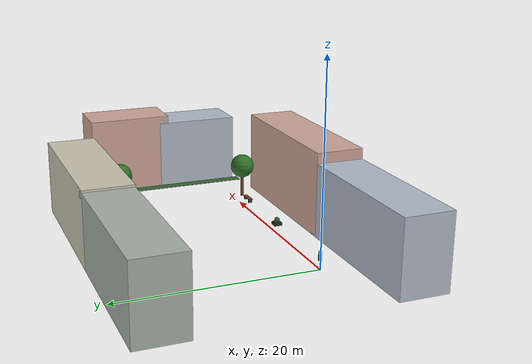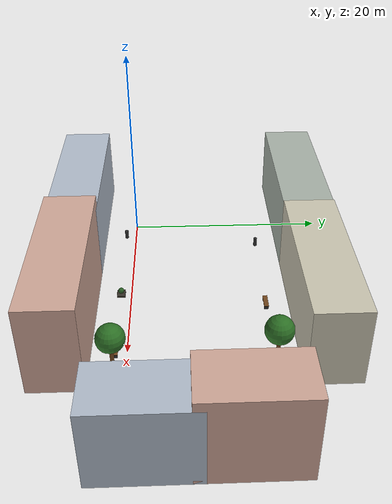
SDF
<sdf version="1.6">
 <world name="sidewalk_ring">
  <model name="grass_R">
   <static>true</static>
   <pose>28.100 6.000 0.045 0 0 0</pose>
   <link name="link">
    <collision name="col"><geometry><box><size>1.2 18 0.03</size></box></geometry></collision>
    <visual name="vis">
     <geometry><box><size>1.2 18 0.03</size></box></geometry>
     <material>
      <ambient>0.22 0.4 0.2 1</ambient>
      <diffuse>0.22 0.4 0.2 1</diffuse>
      <specular>0.1 0.1 0.1 1</specular>
     </material>
    </visual>
   </link>
   <plugin filename="ignition-gazebo-label-system" name="ignition::gazebo::systems::Label">
    <label>10</label>
   </plugin>
  </model>
  <model name="bldg_A1">
   <static>true</static>
   <pose>0.000 -5.700 3.840 0 0 0</pose>
   <link name="link">
    <collision name="col"><geometry><box><size>17 5 7.679317158241488</size></box></geometry></collision>
    <visual name="vis">
     <geometry><box><size>17 5 7.679317158241488</size></box></geometry>
     <material>
      <ambient>0.7 0.74 0.8 1</ambient>
      <diffuse>0.7 0.74 0.8 1</diffuse>
      <specular>0.1 0.1 0.1 1</specular>
     </material>
    </visual>
   </link>
   <plugin filename="ignition-gazebo-label-system" name="ignition::gazebo::systems::Label">
    <label>3</label>
   </plugin>
  </model>
  <model name="bldg_A2">
   <static>true</static>
   <pose>16.000 -5.700 4.386 0 0 0</pose>
   <link name="link">
    <collision name="col"><geometry><box><size>17 5 8.772631752071188</size></box></geometry></collision>
    <visual name="vis">
     <geometry><box><size>17 5 8.772631752071188</size></box></geometry>
     <material>
      <ambient>0.82 0.66 0.6 1</ambient>
      <diffuse>0.82 0.66 0.6 1</diffuse>
      <specular>0.1 0.1 0.1 1</specular>
     </material>
    </visual>
   </link>
   <plugin filename="ignition-gazebo-label-system" name="ignition::gazebo::systems::Label">
    <label>3</label>
   </plugin>
  </model>
  <model name="bldg_B1">
   <static>true</static>
   <pose>0.000 17.700 3.762 0 0 0</pose>
   <link name="link">
    <collision name="col"><geometry><box><size>17 5 7.5235238191868135</size></box></geometry></collision>
    <visual name="vis">
     <geometry><box><size>17 5 7.5235238191868135</size></box></geometry>
     <material>
      <ambient>0.66 0.7 0.66 1</ambient>
      <diffuse>0.66 0.7 0.66 1</diffuse>
      <specular>0.1 0.1 0.1 1</specular>
     </material>
    </visual>
   </link>
   <plugin filename="ignition-gazebo-label-system" name="ignition::gazebo::systems::Label">
    <label>3</label>
   </plugin>
  </model>
  <model name="bldg_B2">
   <static>true</static>
   <pose>16.000 17.700 3.881 0 0 0</pose>
   <link name="link">
    <collision name="col"><geometry><box><size>17 5 7.762154486549691</size></box></geometry></collision>
    <visual name="vis">
     <geometry><box><size>17 5 7.762154486549691</size></box></geometry>
     <material>
      <ambient>0.8 0.78 0.7 1</ambient>
      <diffuse>0.8 0.78 0.7 1</diffuse>
      <specular>0.1 0.1 0.1 1</specular>
     </material>
    </visual>
   </link>
   <plugin filename="ignition-gazebo-label-system" name="ignition::gazebo::systems::Label">
    <label>3</label>
   </plugin>
  </model>
  <model name="bldg_R0">
   <static>true</static>
   <pose>31.200 2.000 3.768 0 0 0</pose>
   <link name="link">
    <collision name="col"><geometry><box><size>5 9 7.535725917125417</size></box></geometry></collision>
    <visual name="vis">
     <geometry><box><size>5 9 7.535725917125417</size></box></geometry>
     <material>
      <ambient>0.7 0.74 0.8 1</ambient>
      <diffuse>0.7 0.74 0.8 1</diffuse>
      <specular>0.1 0.1 0.1 1</specular>
     </material>
    </visual>
   </link>
   <plugin filename="ignition-gazebo-label-system" name="ignition::gazebo::systems::Label">
    <label>3</label>
   </plugin>
  </model>
  <model name="bldg_R1">
   <static>true</static>
   <pose>31.200 10.000 4.189 0 0 0</pose>
   <link name="link">
    <collision name="col"><geometry><box><size>5 9 8.378930617559858</size></box></geometry></collision>
    <visual name="vis">
     <geometry><box><size>5 9 8.378930617559858</size></box></geometry>
     <material>
      <ambient>0.82 0.66 0.6 1</ambient>
      <diffuse>0.82 0.66 0.6 1</diffuse>
      <specular>0.1 0.1 0.1 1</specular>
     </material>
    </visual>
   </link>
   <plugin filename="ignition-gazebo-label-system" name="ignition::gazebo::systems::Label">
    <label>3</label>
   </plugin>
  </model>
  <model name="tree_1">
   <static>true</static>
   <pose>22.00 -1.10 0 0 0 0</pose>
   <link name="link">
    <collision name="tc">
     <pose>0 0 1.62 0 0 0</pose>
     <geometry><cylinder><radius>0.18</radius><length>3.24</length></cylinder></geometry>
    </collision>
    <visual name="tv">
     <pose>0 0 1.62 0 0 0</pose>
     <geometry><cylinder><radius>0.18</radius><length>3.24</length></cylinder></geometry>
     <material><ambient>0.36 0.22 0.10 1</ambient><diffuse>0.45 0.28 0.12 1</diffuse></material>
    </visual>
    <collision name="cc">
     <pose>0 0 3.54 0 0 0</pose>
     <geometry><sphere><radius>1.3</radius></sphere></geometry>
    </collision>
    <visual name="cv">
     <pose>0 0 3.54 0 0 0</pose>
     <geometry><sphere><radius>1.3</radius></sphere></geometry>
     <material><ambient>0.14 0.36 0.12 1</ambient><diffuse>0.18 0.45 0.15 1</diffuse></material>
    </visual>
   </link>
   <plugin filename="ignition-gazebo-label-system" name="ignition::gazebo::systems::Label">
    <label>9</label>
   </plugin>
  </model>
  <model name="tree_3">
   <static>true</static>
   <pose>22.00 13.10 0 0 0 0</pose>
   <link name="link">
    <collision name="tc">
     <pose>0 0 1.82 0 0 0</pose>
     <geometry><cylinder><radius>0.18</radius><length>3.65</length></cylinder></geometry>
    </collision>
    <visual name="tv">
     <pose>0 0 1.82 0 0 0</pose>
     <geometry><cylinder><radius>0.18</radius><length>3.65</length></cylinder></geometry>
     <material><ambient>0.36 0.22 0.10 1</ambient><diffuse>0.45 0.28 0.12 1</diffuse></material>
    </visual>
    <collision name="cc">
     <pose>0 0 3.95 0 0 0</pose>
     <geometry><sphere><radius>1.3</radius></sphere></geometry>
    </collision>
    <visual name="cv">
     <pose>0 0 3.95 0 0 0</pose>
     <geometry><sphere><radius>1.3</radius></sphere></geometry>
     <material><ambient>0.14 0.36 0.12 1</ambient><diffuse>0.18 0.45 0.15 1</diffuse></material>
    </visual>
   </link>
   <plugin filename="ignition-gazebo-label-system" name="ignition::gazebo::systems::Label">
    <label>9</label>
   </plugin>
  </model>
  <model name="trsA1">
   <static>true</static>
   <pose>2.00 -1.00 0 0 0 0</pose>
   <link name="link">
    <collision name="c">
     <pose>0 0 0.45 0 0 0</pose>
     <geometry><cylinder><radius>0.18</radius><length>0.9</length></cylinder></geometry>
    </collision>
    <visual name="v">
     <pose>0 0 0.45 0 0 0</pose>
     <geometry><cylinder><radius>0.18</radius><length>0.9</length></cylinder></geometry>
     <material><ambient>0.14 0.14 0.14 1</ambient><diffuse>0.18 0.18 0.18 1</diffuse></material>
    </visual>
   </link>
   <plugin filename="ignition-gazebo-label-system" name="ignition::gazebo::systems::Label">
    <label>3</label>
   </plugin>
  </model>
  <model name="plA2">
   <static>true</static>
   <pose>12.00 -1.00 0.16 0 0 0</pose>
   <link name="link">
    <collision name="c"><geometry><box><size>0.8 0.8 0.32</size></box></geometry></collision>
    <visual name="v">
     <geometry><box><size>0.8 0.8 0.32</size></box></geometry>
     <material><ambient>0.16 0.14 0.11 1</ambient><diffuse>0.20 0.18 0.14 1</diffuse></material>
    </visual>
   </link>
   <plugin filename="ignition-gazebo-label-system" name="ignition::gazebo::systems::Label">
    <label>3</label>
   </plugin>
  </model>
  <model name="plA2_s">
   <static>true</static>
   <pose>12.00 -1.00 0.55 0 0 0</pose>
   <link name="link">
    <collision name="c"><geometry><sphere><radius>0.28</radius></sphere></geometry></collision>
    <visual name="v">
     <geometry><sphere><radius>0.28</radius></sphere></geometry>
     <material><ambient>0.14 0.30 0.12 1</ambient><diffuse>0.17 0.38 0.15 1</diffuse></material>
    </visual>
   </link>
   <plugin filename="ignition-gazebo-label-system" name="ignition::gazebo::systems::Label">
    <label>9</label>
   </plugin>
  </model>
  <model name="benA2">
   <static>true</static>
   <pose>20.00 -1.00 0 0 0 0</pose>
   <link name="link">
    <collision name="s">
     <pose>0 0 0.42 0 0 0</pose>
     <geometry><box><size>1.6 0.45 0.08</size></box></geometry>
    </collision>
    <visual name="sv">
     <pose>0 0 0.42 0 0 0</pose>
     <geometry><box><size>1.6 0.45 0.08</size></box></geometry>
     <material><ambient>0.36 0.22 0.10 1</ambient><diffuse>0.45 0.28 0.12 1</diffuse></material>
    </visual>
    <collision name="l1">
     <pose>-0.65 0 0.21 0 0 0</pose>
     <geometry><box><size>0.08 0.4 0.42</size></box></geometry>
    </collision>
    <visual name="l1v">
     <pose>-0.65 0 0.21 0 0 0</pose>
     <geometry><box><size>0.08 0.4 0.42</size></box></geometry>
     <material><ambient>0.16 0.16 0.16 1</ambient><diffuse>0.2 0.2 0.2 1</diffuse></material>
    </visual>
    <collision name="l2">
     <pose>0.65 0 0.21 0 0 0</pose>
     <geometry><box><size>0.08 0.4 0.42</size></box></geometry>
    </collision>
    <visual name="l2v">
     <pose>0.65 0 0.21 0 0 0</pose>
     <geometry><box><size>0.08 0.4 0.42</size></box></geometry>
     <material><ambient>0.16 0.16 0.16 1</ambient><diffuse>0.2 0.2 0.2 1</diffuse></material>
    </visual>
   </link>
   <plugin filename="ignition-gazebo-label-system" name="ignition::gazebo::systems::Label">
    <label>3</label>
   </plugin>
  </model>
  <model name="trsB1">
   <static>true</static>
   <pose>4.00 13.00 0 0 0 0</pose>
   <link name="link">
    <collision name="c">
     <pose>0 0 0.45 0 0 0</pose>
     <geometry><cylinder><radius>0.18</radius><length>0.9</length></cylinder></geometry>
    </collision>
    <visual name="v">
     <pose>0 0 0.45 0 0 0</pose>
     <geometry><cylinder><radius>0.18</radius><length>0.9</length></cylinder></geometry>
     <material><ambient>0.14 0.14 0.14 1</ambient><diffuse>0.18 0.18 0.18 1</diffuse></material>
    </visual>
   </link>
   <plugin filename="ignition-gazebo-label-system" name="ignition::gazebo::systems::Label">
    <label>3</label>
   </plugin>
  </model>
  <model name="benB2">
   <static>true</static>
   <pose>14.00 13.00 0 0 0 0</pose>
   <link name="link">
    <collision name="s">
     <pose>0 0 0.42 0 0 0</pose>
     <geometry><box><size>1.6 0.45 0.08</size></box></geometry>
    </collision>
    <visual name="sv">
     <pose>0 0 0.42 0 0 0</pose>
     <geometry><box><size>1.6 0.45 0.08</size></box></geometry>
     <material><ambient>0.36 0.22 0.10 1</ambient><diffuse>0.45 0.28 0.12 1</diffuse></material>
    </visual>
    <collision name="l1">
     <pose>-0.65 0 0.21 0 0 0</pose>
     <geometry><box><size>0.08 0.4 0.42</size></box></geometry>
    </collision>
    <visual name="l1v">
     <pose>-0.65 0 0.21 0 0 0</pose>
     <geometry><box><size>0.08 0.4 0.42</size></box></geometry>
     <material><ambient>0.16 0.16 0.16 1</ambient><diffuse>0.2 0.2 0.2 1</diffuse></material>
    </visual>
    <collision name="l2">
     <pose>0.65 0 0.21 0 0 0</pose>
     <geometry><box><size>0.08 0.4 0.42</size></box></geometry>
    </collision>
    <visual name="l2v">
     <pose>0.65 0 0.21 0 0 0</pose>
     <geometry><box><size>0.08 0.4 0.42</size></box></geometry>
     <material><ambient>0.16 0.16 0.16 1</ambient><diffuse>0.2 0.2 0.2 1</diffuse></material>
    </visual>
   </link>
   <plugin filename="ignition-gazebo-label-system" name="ignition::gazebo::systems::Label">
    <label>3</label>
   </plugin>
  </model>
  <model name="plB2">
   <static>true</static>
   <pose>22.00 13.00 0.16 0 0 0</pose>
   <link name="link">
    <collision name="c"><geometry><box><size>0.8 0.8 0.32</size></box></geometry></collision>
    <visual name="v">
     <geometry><box><size>0.8 0.8 0.32</size></box></geometry>
     <material><ambient>0.16 0.14 0.11 1</ambient><diffuse>0.20 0.18 0.14 1</diffuse></material>
    </visual>
   </link>
   <plugin filename="ignition-gazebo-label-system" name="ignition::gazebo::systems::Label">
    <label>3</label>
   </plugin>
  </model>
  <model name="plB2_s">
   <static>true</static>
   <pose>22.00 13.00 0.55 0 0 0</pose>
   <link name="link">
    <collision name="c"><geometry><sphere><radius>0.28</radius></sphere></geometry></collision>
    <visual name="v">
     <geometry><sphere><radius>0.28</radius></sphere></geometry>
     <material><ambient>0.14 0.30 0.12 1</ambient><diffuse>0.17 0.38 0.15 1</diffuse></material>
    </visual>
   </link>
   <plugin filename="ignition-gazebo-label-system" name="ignition::gazebo::systems::Label">
    <label>9</label>
   </plugin>
  </model>
 </world>
</sdf>
